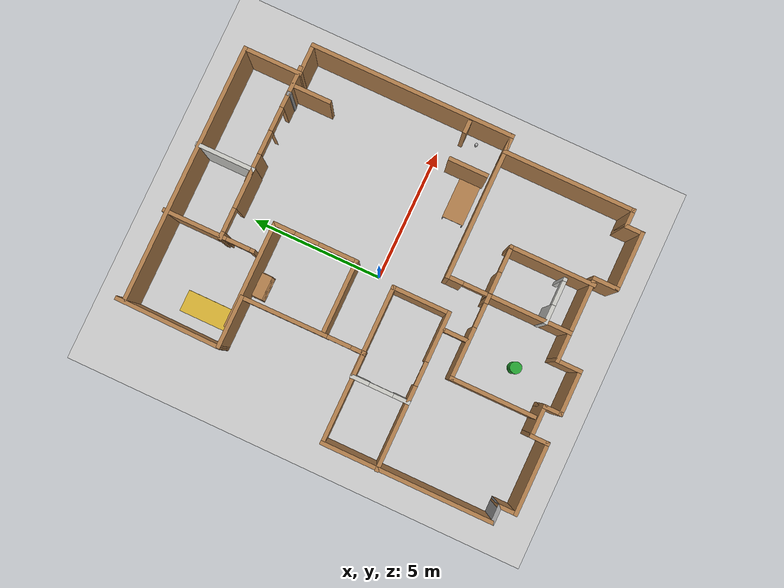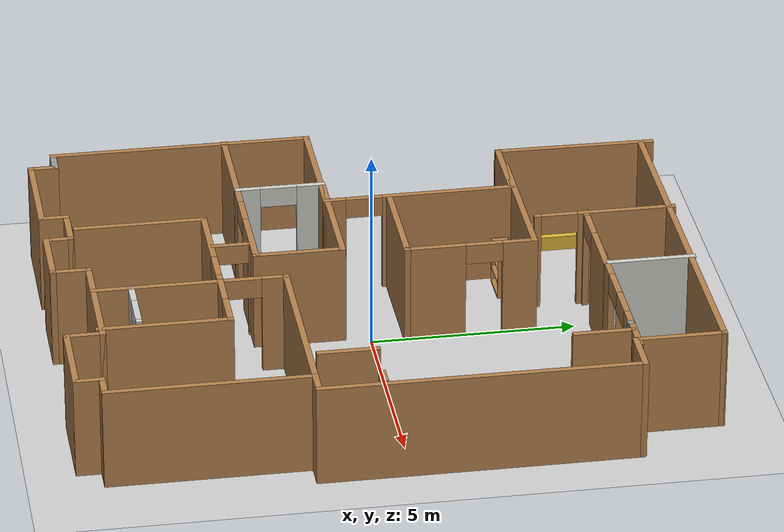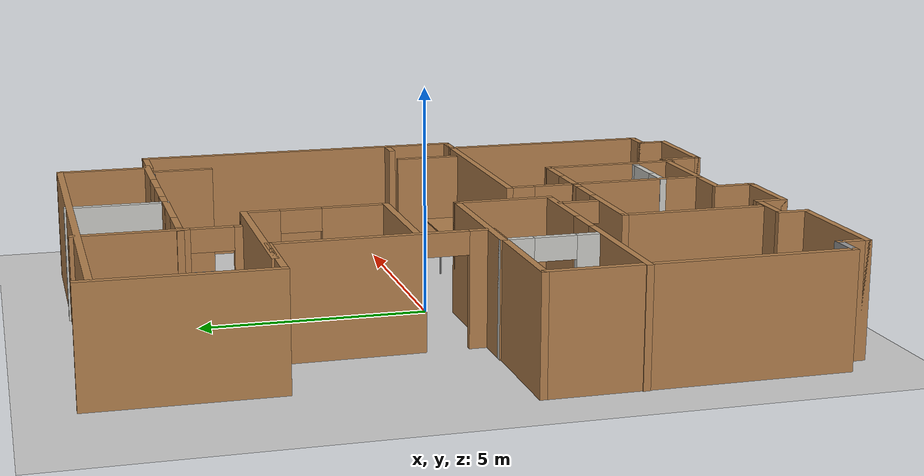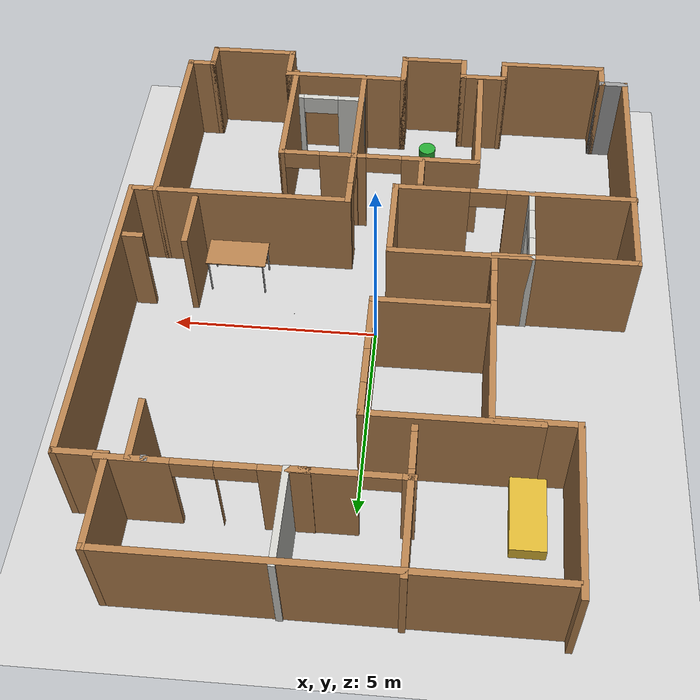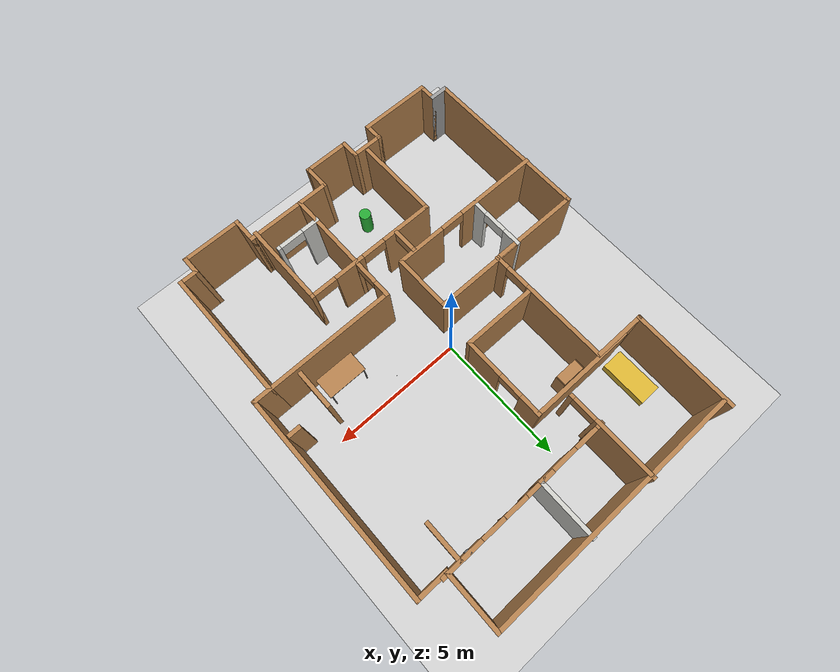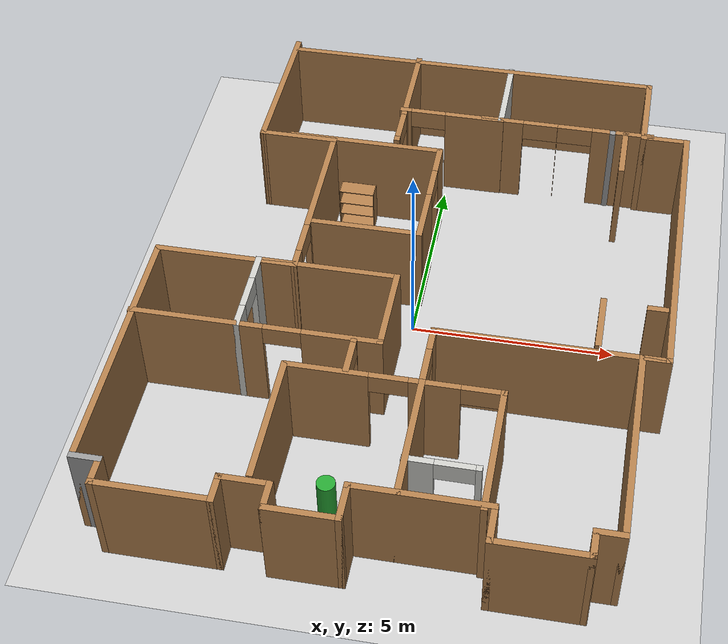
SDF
<sdf version="1.7">
 <world name="default">
  <light name="sun" type="directional">
   <pose>0 0 10 0 -0 0</pose>
   <diffuse>0.8 0.8 0.8 1</diffuse>
   <specular>0.2 0.2 0.2 1</specular>
   <attenuation>
    <range>1000</range>
    <constant>0.9</constant>
    <linear>0.01</linear>
    <quadratic>0.001</quadratic>
   </attenuation>
   <direction>-0.5 0.1 -0.9</direction>
   <spot><inner_angle>0</inner_angle><outer_angle>0</outer_angle><falloff>0</falloff></spot>
  </light>
  <model name="ground_plane">
   <static>1</static>
   <link name="link">
    <collision name="collision">
     <geometry><plane><normal>0 0 1</normal><size>100 100</size></plane></geometry>
     <surface>
      <contact><collide_bitmask>65535</collide_bitmask></contact>
      <friction><ode><mu>100</mu><mu2>50</mu2></ode></friction>
     </surface>
    </collision>
    <visual name="visual">
     <cast_shadows>0</cast_shadows>
     <geometry><plane><normal>0 0 1</normal><size>100 100</size></plane></geometry>
     <material>
      <script><uri>file://media/materials/scripts/gazebo.material</uri><name>Gazebo/Grey</name></script>
     </material>
    </visual>
   </link>
  </model>
  <gravity>0 0 -9.8</gravity>
  <magnetic_field>6e-06 2.3e-05 -4.2e-05</magnetic_field>
  <atmosphere type="adiabatic"/>
  <physics type="ode">
   <max_step_size>0.001</max_step_size>
   <real_time_factor>1</real_time_factor>
   <real_time_update_rate>1000</real_time_update_rate>
  </physics>
  <scene><ambient>0.4 0.4 0.4 1</ambient><background>0.7 0.7 0.7 1</background><shadows>1</shadows></scene>
  <spherical_coordinates>
   <surface_model>EARTH_WGS84</surface_model>
   <latitude_deg>0</latitude_deg>
   <longitude_deg>0</longitude_deg>
   <elevation>0</elevation>
   <heading_deg>0</heading_deg>
  </spherical_coordinates>
  <model name="wall">
   <pose>0.04617 0.06426 0 0 -0 0</pose>
   <link name="Wall_0">
    <collision name="Wall_0_Collision">
     <geometry><box><size>4 0.15 2.5</size></box></geometry>
     <pose>0 0 1.25 0 -0 0</pose>
    </collision>
    <visual name="Wall_0_Visual">
     <pose>0 0 1.25 0 -0 0</pose>
     <geometry><box><size>4 0.15 2.5</size></box></geometry>
     <material>
      <script><uri>file://media/materials/scripts/gazebo.material</uri><name>Gazebo/Wood</name></script>
      <ambient>1 1 1 1</ambient>
     </material>
     <meta><layer>0</layer></meta>
    </visual>
    <pose>-4.65887 5.77462 0 0 -0 -1.58281</pose>
   </link>
   <link name="Wall_1">
    <collision name="Wall_1_Collision">
     <geometry><box><size>2 0.15 2.5</size></box></geometry>
     <pose>0 0 1.25 0 -0 0</pose>
    </collision>
    <visual name="Wall_1_Visual">
     <pose>0 0 1.25 0 -0 0</pose>
     <geometry><box><size>2 0.15 2.5</size></box></geometry>
     <material>
      <script><uri>file://media/materials/scripts/gazebo.material</uri><name>Gazebo/Wood</name></script>
      <ambient>1 1 1 1</ambient>
     </material>
     <meta><layer>0</layer></meta>
    </visual>
    <pose>-3.73387 3.84962 0 0 -0 0</pose>
   </link>
   <link name="Wall_10">
    <collision name="Wall_10_Collision">
     <geometry><box><size>0.75 0.15 2.5</size></box></geometry>
     <pose>0 0 1.25 0 -0 0</pose>
    </collision>
    <visual name="Wall_10_Visual">
     <pose>0 0 1.25 0 -0 0</pose>
     <geometry><box><size>0.75 0.15 2.5</size></box></geometry>
     <material>
      <script><uri>file://media/materials/scripts/gazebo.material</uri><name>Gazebo/Wood</name></script>
      <ambient>1 1 1 1</ambient>
     </material>
     <meta><layer>0</layer></meta>
    </visual>
    <pose>-1.83574 -7.40038 0 0 -0 -1.5708</pose>
   </link>
   <link name="Wall_11">
    <collision name="Wall_11_Collision">
     <geometry><box><size>1.75 0.15 2.5</size></box></geometry>
     <pose>0 0 1.25 0 -0 0</pose>
    </collision>
    <visual name="Wall_11_Visual">
     <pose>0 0 1.25 0 -0 0</pose>
     <geometry><box><size>1.75 0.15 2.5</size></box></geometry>
     <material>
      <script><uri>file://media/materials/scripts/gazebo.material</uri><name>Gazebo/Wood</name></script>
      <ambient>1 1 1 1</ambient>
     </material>
     <meta><layer>0</layer></meta>
    </visual>
    <pose>-1.03574 -7.70038 0 0 -0 0</pose>
   </link>
   <link name="Wall_12">
    <collision name="Wall_12_Collision">
     <geometry><box><size>1 0.15 2.5</size></box></geometry>
     <pose>0 0 1.25 0 -0 0</pose>
    </collision>
    <visual name="Wall_12_Visual">
     <pose>0 0 1.25 0 -0 0</pose>
     <geometry><box><size>1 0.15 2.5</size></box></geometry>
     <material>
      <script><uri>file://media/materials/scripts/gazebo.material</uri><name>Gazebo/Wood</name></script>
      <ambient>1 1 1 1</ambient>
     </material>
     <meta><layer>0</layer></meta>
    </visual>
    <pose>-0.235743 -7.27538 0 0 -0 1.5708</pose>
   </link>
   <link name="Wall_13">
    <collision name="Wall_13_Collision">
     <geometry><box><size>3.25 0.15 2.5</size></box></geometry>
     <pose>0 0 1.25 0 -0 0</pose>
    </collision>
    <visual name="Wall_13_Visual">
     <pose>0 0 1.25 0 -0 0</pose>
     <geometry><box><size>3.25 0.15 2.5</size></box></geometry>
     <material>
      <script><uri>file://media/materials/scripts/gazebo.material</uri><name>Gazebo/Wood</name></script>
      <ambient>1 1 1 1</ambient>
     </material>
     <meta><layer>0</layer></meta>
    </visual>
    <pose>1.31426 -6.85038 0 0 -0 0</pose>
   </link>
   <link name="Wall_14">
    <collision name="Wall_14_Collision">
     <geometry><box><size>1 0.15 2.5</size></box></geometry>
     <pose>0 0 1.25 0 -0 0</pose>
    </collision>
    <visual name="Wall_14_Visual">
     <pose>0 0 1.25 0 -0 0</pose>
     <geometry><box><size>1 0.15 2.5</size></box></geometry>
     <material>
      <script><uri>file://media/materials/scripts/gazebo.material</uri><name>Gazebo/Wood</name></script>
      <ambient>1 1 1 1</ambient>
     </material>
     <meta><layer>0</layer></meta>
    </visual>
    <pose>2.86426 -7.27538 0 0 -0 -1.5708</pose>
   </link>
   <link name="Wall_15">
    <collision name="Wall_15_Collision">
     <geometry><box><size>2.25 0.15 2.5</size></box></geometry>
     <pose>0 0 1.25 0 -0 0</pose>
    </collision>
    <visual name="Wall_15_Visual">
     <pose>0 0 1.25 0 -0 0</pose>
     <geometry><box><size>2.25 0.15 2.5</size></box></geometry>
     <material>
      <script><uri>file://media/materials/scripts/gazebo.material</uri><name>Gazebo/Wood</name></script>
      <ambient>1 1 1 1</ambient>
     </material>
     <meta><layer>0</layer></meta>
    </visual>
    <pose>3.91426 -7.70038 0 0 -0 0</pose>
   </link>
   <link name="Wall_16">
    <collision name="Wall_16_Collision">
     <geometry><box><size>0.75 0.15 2.5</size></box></geometry>
     <pose>0 0 1.25 0 -0 0</pose>
    </collision>
    <visual name="Wall_16_Visual">
     <pose>0 0 1.25 0 -0 0</pose>
     <geometry><box><size>0.75 0.15 2.5</size></box></geometry>
     <material>
      <script><uri>file://media/materials/scripts/gazebo.material</uri><name>Gazebo/Wood</name></script>
      <ambient>1 1 1 1</ambient>
     </material>
     <meta><layer>0</layer></meta>
    </visual>
    <pose>4.96426 -7.40038 0 0 -0 1.5708</pose>
   </link>
   <link name="Wall_17">
    <collision name="Wall_17_Collision">
     <geometry><box><size>0.75 0.15 2.5</size></box></geometry>
     <pose>0 0 1.25 0 -0 0</pose>
    </collision>
    <visual name="Wall_17_Visual">
     <pose>0 0 1.25 0 -0 0</pose>
     <geometry><box><size>0.75 0.15 2.5</size></box></geometry>
     <material>
      <script><uri>file://media/materials/scripts/gazebo.material</uri><name>Gazebo/Wood</name></script>
      <ambient>1 1 1 1</ambient>
     </material>
     <meta><layer>0</layer></meta>
    </visual>
    <pose>5.26426 -7.10038 0 0 -0 0</pose>
   </link>
   <link name="Wall_18">
    <collision name="Wall_18_Collision">
     <geometry><box><size>5 0.15 2.5</size></box></geometry>
     <pose>0 0 1.25 0 -0 0</pose>
    </collision>
    <visual name="Wall_18_Visual">
     <pose>0 0 1.25 0 -0 0</pose>
     <geometry><box><size>5 0.15 2.5</size></box></geometry>
     <material>
      <script><uri>file://media/materials/scripts/gazebo.material</uri><name>Gazebo/Wood</name></script>
      <ambient>1 1 1 1</ambient>
     </material>
     <meta><layer>0</layer></meta>
    </visual>
    <pose>5.56426 -4.67538 0 0 -0 1.5708</pose>
   </link>
   <link name="Wall_19">
    <collision name="Wall_19_Collision">
     <geometry><box><size>0.75 0.15 2.5</size></box></geometry>
     <pose>0 0 1.25 0 -0 0</pose>
    </collision>
    <visual name="Wall_19_Visual">
     <pose>0 0 1.25 0 -0 0</pose>
     <geometry><box><size>0.75 0.15 2.5</size></box></geometry>
     <material>
      <script><uri>file://media/materials/scripts/gazebo.material</uri><name>Gazebo/Wood</name></script>
      <ambient>1 1 1 1</ambient>
     </material>
     <meta><layer>0</layer></meta>
    </visual>
    <pose>5.86426 -2.25038 0 0 -0 0</pose>
   </link>
   <link name="Wall_2">
    <pose>-2.79731 1.54962 0 0 -0 -1.56577</pose>
    <visual name="Wall_2_Visual_0">
     <pose>-0.729525 0 1.25 0 -0 0</pose>
     <geometry><box><size>3.29101 0.15 2.5</size></box></geometry>
     <material>
      <script><uri>file://media/materials/scripts/gazebo.material</uri><name>Gazebo/Wood</name></script>
      <ambient>1 1 1 1</ambient>
     </material>
     <meta><layer>0</layer></meta>
    </visual>
    <collision name="Wall_2_Collision_0">
     <geometry><box><size>3.29101 0.15 2.5</size></box></geometry>
     <pose>-0.729525 0 1.25 0 -0 0</pose>
    </collision>
    <visual name="Wall_2_Visual_1">
     <pose>2.0955 0 1.25 0 -0 0</pose>
     <geometry><box><size>0.55905 0.15 2.5</size></box></geometry>
     <material>
      <script><uri>file://media/materials/scripts/gazebo.material</uri><name>Gazebo/Wood</name></script>
      <ambient>1 1 1 1</ambient>
     </material>
     <meta><layer>0</layer></meta>
    </visual>
    <collision name="Wall_2_Collision_1">
     <geometry><box><size>0.55905 0.15 2.5</size></box></geometry>
     <pose>2.0955 0 1.25 0 -0 0</pose>
    </collision>
    <visual name="Wall_2_Visual_2">
     <pose>1.36598 0 2.25 0 -0 0</pose>
     <geometry><box><size>0.9 0.15 0.5</size></box></geometry>
     <material>
      <script><uri>file://media/materials/scripts/gazebo.material</uri><name>Gazebo/Wood</name></script>
      <ambient>1 1 1 1</ambient>
     </material>
     <meta><layer>0</layer></meta>
    </visual>
    <collision name="Wall_2_Collision_2">
     <geometry><box><size>0.9 0.15 0.5</size></box></geometry>
     <pose>1.36598 0 2.25 0 -0 0</pose>
    </collision>
   </link>
   <link name="Wall_20">
    <collision name="Wall_20_Collision">
     <geometry><box><size>7.75 0.15 2.5</size></box></geometry>
     <pose>0 0 1.25 0 -0 0</pose>
    </collision>
    <visual name="Wall_20_Visual">
     <pose>0 0 1.25 0 -0 0</pose>
     <geometry><box><size>7.75 0.15 2.5</size></box></geometry>
     <material>
      <script><uri>file://media/materials/scripts/gazebo.material</uri><name>Gazebo/Wood</name></script>
      <ambient>1 1 1 1</ambient>
     </material>
     <meta><layer>0</layer></meta>
    </visual>
    <pose>6.16426 1.54962 0 0 -0 1.5708</pose>
   </link>
   <link name="Wall_21">
    <collision name="Wall_21_Collision">
     <geometry><box><size>1.25 0.15 2.5</size></box></geometry>
     <pose>0 0 1.25 0 -0 0</pose>
    </collision>
    <visual name="Wall_21_Visual">
     <pose>0 0 1.25 0 -0 0</pose>
     <geometry><box><size>1.25 0.15 2.5</size></box></geometry>
     <material>
      <script><uri>file://media/materials/scripts/gazebo.material</uri><name>Gazebo/Wood</name></script>
      <ambient>1 1 1 1</ambient>
     </material>
     <meta><layer>0</layer></meta>
    </visual>
    <pose>5.61426 5.34962 0 0 -0 3.14159</pose>
   </link>
   <link name="Wall_22">
    <collision name="Wall_22_Collision">
     <geometry><box><size>2.25 0.15 2.5</size></box></geometry>
     <pose>0 0 1.25 0 -0 0</pose>
    </collision>
    <visual name="Wall_22_Visual">
     <pose>0 0 1.25 0 -0 0</pose>
     <geometry><box><size>2.25 0.15 2.5</size></box></geometry>
     <material>
      <script><uri>file://media/materials/scripts/gazebo.material</uri><name>Gazebo/Wood</name></script>
      <ambient>1 1 1 1</ambient>
     </material>
     <meta><layer>0</layer></meta>
    </visual>
    <pose>5.06426 6.39962 0 0 -0 1.5708</pose>
   </link>
   <link name="Wall_23">
    <collision name="Wall_23_Collision">
     <geometry><box><size>9.75 0.15 2.5</size></box></geometry>
     <pose>0 0 1.25 0 -0 0</pose>
    </collision>
    <visual name="Wall_23_Visual">
     <pose>0 0 1.25 0 -0 0</pose>
     <geometry><box><size>9.75 0.15 2.5</size></box></geometry>
     <material>
      <script><uri>file://media/materials/scripts/gazebo.material</uri><name>Gazebo/Wood</name></script>
      <ambient>1 1 1 1</ambient>
     </material>
     <meta><layer>0</layer></meta>
    </visual>
    <pose>0.264257 7.44962 0 0 -0 3.14159</pose>
   </link>
   <link name="Wall_25">
    <pose>-1.21241 5.86271 0 0 -0 -1.5708</pose>
    <visual name="Wall_25_Visual_0">
     <pose>-0.538098 0 1.25 0 -0 0</pose>
     <geometry><box><size>2.4238 0.15 2.5</size></box></geometry>
     <material>
      <script><uri>file://media/materials/scripts/gazebo.material</uri><name>Gazebo/Wood</name></script>
      <ambient>1 1 1 1</ambient>
     </material>
     <meta><layer>0</layer></meta>
    </visual>
    <collision name="Wall_25_Collision_0">
     <geometry><box><size>2.4238 0.15 2.5</size></box></geometry>
     <pose>-0.538098 0 1.25 0 -0 0</pose>
    </collision>
    <visual name="Wall_25_Visual_1">
     <pose>1.6619 0 1.25 0 -0 0</pose>
     <geometry><box><size>0.176196 0.15 2.5</size></box></geometry>
     <material>
      <script><uri>file://media/materials/scripts/gazebo.material</uri><name>Gazebo/Wood</name></script>
      <ambient>1 1 1 1</ambient>
     </material>
     <meta><layer>0</layer></meta>
    </visual>
    <collision name="Wall_25_Collision_1">
     <geometry><box><size>0.176196 0.15 2.5</size></box></geometry>
     <pose>1.6619 0 1.25 0 -0 0</pose>
    </collision>
    <visual name="Wall_25_Visual_2">
     <pose>1.1238 0 2.25 0 -0 0</pose>
     <geometry><box><size>0.9 0.15 0.5</size></box></geometry>
     <material>
      <script><uri>file://media/materials/scripts/gazebo.material</uri><name>Gazebo/Wood</name></script>
      <ambient>1 1 1 1</ambient>
     </material>
     <meta><layer>0</layer></meta>
    </visual>
    <collision name="Wall_25_Collision_2">
     <geometry><box><size>0.9 0.15 0.5</size></box></geometry>
     <pose>1.1238 0 2.25 0 -0 0</pose>
    </collision>
   </link>
   <link name="Wall_29">
    <collision name="Wall_29_Collision">
     <geometry><box><size>4 0.15 2.5</size></box></geometry>
     <pose>0 0 1.25 0 -0 0</pose>
    </collision>
    <visual name="Wall_29_Visual">
     <pose>0 0 1.25 0 -0 0</pose>
     <geometry><box><size>4 0.15 2.5</size></box></geometry>
     <material>
      <script><uri>file://media/materials/scripts/gazebo.material</uri><name>Gazebo/Wood</name></script>
      <ambient>1 1 1 1</ambient>
     </material>
     <meta><layer>0</layer></meta>
    </visual>
    <pose>-1.97056 3.9062 0 0 -0 0</pose>
   </link>
   <link name="Wall_3">
    <collision name="Wall_3_Collision">
     <geometry><box><size>3.5 0.15 2.5</size></box></geometry>
     <pose>0 0 1.25 0 -0 0</pose>
    </collision>
    <visual name="Wall_3_Visual">
     <pose>0 0 1.25 0 -0 0</pose>
     <geometry><box><size>3.5 0.15 2.5</size></box></geometry>
     <material>
      <script><uri>file://media/materials/scripts/gazebo.material</uri><name>Gazebo/Wood</name></script>
      <ambient>1 1 1 1</ambient>
     </material>
     <meta><layer>0</layer></meta>
    </visual>
    <pose>-4.46074 -0.750378 0 0 -0 3.14159</pose>
   </link>
   <link name="Wall_30">
    <pose>-0.045563 2.3562 0 0 -0 -1.5708</pose>
    <visual name="Wall_30_Visual_0">
     <pose>-1.19954 0 1.25 0 -0 0</pose>
     <geometry><box><size>0.850922 0.15 2.5</size></box></geometry>
     <material>
      <script><uri>file://media/materials/scripts/gazebo.material</uri><name>Gazebo/Wood</name></script>
      <ambient>1 1 1 1</ambient>
     </material>
     <meta><layer>0</layer></meta>
    </visual>
    <collision name="Wall_30_Collision_0">
     <geometry><box><size>0.850922 0.15 2.5</size></box></geometry>
     <pose>-1.19954 0 1.25 0 -0 0</pose>
    </collision>
    <visual name="Wall_30_Visual_1">
     <pose>0.875461 0 1.25 0 -0 0</pose>
     <geometry><box><size>1.49908 0.15 2.5</size></box></geometry>
     <material>
      <script><uri>file://media/materials/scripts/gazebo.material</uri><name>Gazebo/Wood</name></script>
      <ambient>1 1 1 1</ambient>
     </material>
     <meta><layer>0</layer></meta>
    </visual>
    <collision name="Wall_30_Collision_1">
     <geometry><box><size>1.49908 0.15 2.5</size></box></geometry>
     <pose>0.875461 0 1.25 0 -0 0</pose>
    </collision>
    <visual name="Wall_30_Visual_2">
     <pose>-0.324078 0 2.25 0 -0 0</pose>
     <geometry><box><size>0.9 0.15 0.5</size></box></geometry>
     <material>
      <script><uri>file://media/materials/scripts/gazebo.material</uri><name>Gazebo/Wood</name></script>
      <ambient>1 1 1 1</ambient>
     </material>
     <meta><layer>0</layer></meta>
    </visual>
    <collision name="Wall_30_Collision_2">
     <geometry><box><size>0.9 0.15 0.5</size></box></geometry>
     <pose>-0.324078 0 2.25 0 -0 0</pose>
    </collision>
   </link>
   <link name="Wall_31">
    <collision name="Wall_31_Collision">
     <geometry><box><size>2.75 0.15 2.5</size></box></geometry>
     <pose>0 0 1.25 0 -0 0</pose>
    </collision>
    <visual name="Wall_31_Visual">
     <pose>0 0 1.25 0 -0 0</pose>
     <geometry><box><size>2.75 0.15 2.5</size></box></geometry>
     <material>
      <script><uri>file://media/materials/scripts/gazebo.material</uri><name>Gazebo/Wood</name></script>
      <ambient>1 1 1 1</ambient>
     </material>
     <meta><layer>0</layer></meta>
    </visual>
    <pose>-1.34556 0.806202 0 0 -0 3.14159</pose>
   </link>
   <link name="Wall_33">
    <collision name="Wall_33_Collision">
     <geometry><box><size>3.5 0.15 2.5</size></box></geometry>
     <pose>0 0 1.25 0 -0 0</pose>
    </collision>
    <visual name="Wall_33_Visual">
     <pose>0 0 1.25 0 -0 0</pose>
     <geometry><box><size>3.5 0.15 2.5</size></box></geometry>
     <material>
      <script><uri>file://media/materials/scripts/gazebo.material</uri><name>Gazebo/Wood</name></script>
      <ambient>1 1 1 1</ambient>
     </material>
     <meta><layer>0</layer></meta>
    </visual>
    <pose>-1.98926 -0.71992 0 0 -0 0</pose>
   </link>
   <link name="Wall_34">
    <collision name="Wall_34_Collision">
     <geometry><box><size>2.25 0.15 2.5</size></box></geometry>
     <pose>0 0 1.25 0 -0 0</pose>
    </collision>
    <visual name="Wall_34_Visual">
     <pose>0 0 1.25 0 -0 0</pose>
     <geometry><box><size>2.25 0.15 2.5</size></box></geometry>
     <material>
      <script><uri>file://media/materials/scripts/gazebo.material</uri><name>Gazebo/Wood</name></script>
      <ambient>1 1 1 1</ambient>
     </material>
     <meta><layer>0</layer></meta>
    </visual>
    <pose>-0.314257 -1.76992 0 0 -0 -1.5708</pose>
   </link>
   <link name="Wall_35">
    <pose>-3.23926 -2.81992 0 0 -0 3.14159</pose>
    <visual name="Wall_35_Visual_0">
     <pose>-2.0445 0 1.25 0 -0 0</pose>
     <geometry><box><size>1.91099 0.15 2.5</size></box></geometry>
     <material>
      <script><uri>file://media/materials/scripts/gazebo.material</uri><name>Gazebo/Wood</name></script>
      <ambient>1 1 1 1</ambient>
     </material>
     <meta><layer>0</layer></meta>
    </visual>
    <collision name="Wall_35_Collision_0">
     <geometry><box><size>1.91099 0.15 2.5</size></box></geometry>
     <pose>-2.0445 0 1.25 0 -0 0</pose>
    </collision>
    <visual name="Wall_35_Visual_1">
     <pose>1.4055 0 1.25 0 -0 0</pose>
     <geometry><box><size>3.18901 0.15 2.5</size></box></geometry>
     <material>
      <script><uri>file://media/materials/scripts/gazebo.material</uri><name>Gazebo/Wood</name></script>
      <ambient>1 1 1 1</ambient>
     </material>
     <meta><layer>0</layer></meta>
    </visual>
    <collision name="Wall_35_Collision_1">
     <geometry><box><size>3.18901 0.15 2.5</size></box></geometry>
     <pose>1.4055 0 1.25 0 -0 0</pose>
    </collision>
    <visual name="Wall_35_Visual_2">
     <pose>-0.639008 0 2.25 0 -0 0</pose>
     <geometry><box><size>0.9 0.15 0.5</size></box></geometry>
     <material>
      <script><uri>file://media/materials/scripts/gazebo.material</uri><name>Gazebo/Wood</name></script>
      <ambient>1 1 1 1</ambient>
     </material>
     <meta><layer>0</layer></meta>
    </visual>
    <collision name="Wall_35_Collision_2">
     <geometry><box><size>0.9 0.15 0.5</size></box></geometry>
     <pose>-0.639008 0 2.25 0 -0 0</pose>
    </collision>
   </link>
   <link name="Wall_37">
    <pose>-3.66426 -1.76992 0 0 -0 -1.5708</pose>
    <visual name="Wall_37_Visual_0">
     <pose>-0.768931 0 1.25 0 -0 0</pose>
     <geometry><box><size>0.712139 0.15 2.5</size></box></geometry>
     <material>
      <script><uri>file://media/materials/scripts/gazebo.material</uri><name>Gazebo/CeilingTiled</name></script>
      <ambient>1 1 1 1</ambient>
     </material>
     <meta><layer>0</layer></meta>
    </visual>
    <collision name="Wall_37_Collision_0">
     <geometry><box><size>0.712139 0.15 2.5</size></box></geometry>
     <pose>-0.768931 0 1.25 0 -0 0</pose>
    </collision>
    <visual name="Wall_37_Visual_1">
     <pose>0.806069 0 1.25 0 -0 0</pose>
     <geometry><box><size>0.637861 0.15 2.5</size></box></geometry>
     <material>
      <script><uri>file://media/materials/scripts/gazebo.material</uri><name>Gazebo/CeilingTiled</name></script>
      <ambient>1 1 1 1</ambient>
     </material>
     <meta><layer>0</layer></meta>
    </visual>
    <collision name="Wall_37_Collision_1">
     <geometry><box><size>0.637861 0.15 2.5</size></box></geometry>
     <pose>0.806069 0 1.25 0 -0 0</pose>
    </collision>
    <visual name="Wall_37_Visual_2">
     <pose>0.037139 0 2.25 0 -0 0</pose>
     <geometry><box><size>0.9 0.15 0.5</size></box></geometry>
     <material>
      <script><uri>file://media/materials/scripts/gazebo.material</uri><name>Gazebo/CeilingTiled</name></script>
      <ambient>1 1 1 1</ambient>
     </material>
     <meta><layer>0</layer></meta>
    </visual>
    <collision name="Wall_37_Collision_2">
     <geometry><box><size>0.9 0.15 0.5</size></box></geometry>
     <pose>0.037139 0 2.25 0 -0 0</pose>
    </collision>
   </link>
   <link name="Wall_39">
    <pose>-0.911715 -3.3192 0 0 -0 -1.5708</pose>
    <visual name="Wall_39_Visual_0">
     <pose>-0.444629 0 1.25 0 -0 0</pose>
     <geometry><box><size>0.110743 0.15 2.5</size></box></geometry>
     <material>
      <script><uri>file://media/materials/scripts/gazebo.material</uri><name>Gazebo/Wood</name></script>
      <ambient>1 1 1 1</ambient>
     </material>
     <meta><layer>0</layer></meta>
    </visual>
    <collision name="Wall_39_Collision_0">
     <geometry><box><size>0.110743 0.15 2.5</size></box></geometry>
     <pose>-0.444629 0 1.25 0 -0 0</pose>
    </collision>
    <visual name="Wall_39_Visual_1">
     <pose>0.055371 0 2.25 0 -0 0</pose>
     <geometry><box><size>0.889257 0.15 0.5</size></box></geometry>
     <material>
      <script><uri>file://media/materials/scripts/gazebo.material</uri><name>Gazebo/Wood</name></script>
      <ambient>1 1 1 1</ambient>
     </material>
     <meta><layer>0</layer></meta>
    </visual>
    <collision name="Wall_39_Collision_1">
     <geometry><box><size>0.889257 0.15 0.5</size></box></geometry>
     <pose>0.055371 0 2.25 0 -0 0</pose>
    </collision>
   </link>
   <link name="Wall_4">
    <collision name="Wall_4_Collision">
     <geometry><box><size>6.5 0.15 2.5</size></box></geometry>
     <pose>0 0 1.25 0 -0 0</pose>
    </collision>
    <visual name="Wall_4_Visual">
     <pose>0 0 1.25 0 -0 0</pose>
     <geometry><box><size>6.5 0.15 2.5</size></box></geometry>
     <material>
      <script><uri>file://media/materials/scripts/gazebo.material</uri><name>Gazebo/Wood</name></script>
      <ambient>1 1 1 1</ambient>
     </material>
     <meta><layer>0</layer></meta>
    </visual>
    <pose>-6.13574 -3.92538 0 0 -0 -1.5708</pose>
   </link>
   <link name="Wall_41">
    <collision name="Wall_41_Collision">
     <geometry><box><size>5.5 0.15 2.5</size></box></geometry>
     <pose>0 0 1.25 0 -0 0</pose>
    </collision>
    <visual name="Wall_41_Visual">
     <pose>0 0 1.25 0 -0 0</pose>
     <geometry><box><size>5.5 0.15 2.5</size></box></geometry>
     <material>
      <script><uri>file://media/materials/scripts/gazebo.material</uri><name>Gazebo/Wood</name></script>
      <ambient>1 1 1 1</ambient>
     </material>
     <meta><layer>0</layer></meta>
    </visual>
    <pose>3.48926 -2.25038 0 0 -0 3.14159</pose>
   </link>
   <link name="Wall_42">
    <pose>0.814257 -4.55038 0 0 -0 -1.5708</pose>
    <visual name="Wall_42_Visual_0">
     <pose>-2.04398 0 1.25 0 -0 0</pose>
     <geometry><box><size>0.662039 0.15 2.5</size></box></geometry>
     <material>
      <script><uri>file://media/materials/scripts/gazebo.material</uri><name>Gazebo/Wood</name></script>
      <ambient>1 1 1 1</ambient>
     </material>
     <meta><layer>0</layer></meta>
    </visual>
    <collision name="Wall_42_Collision_0">
     <geometry><box><size>0.662039 0.15 2.5</size></box></geometry>
     <pose>-2.04398 0 1.25 0 -0 0</pose>
    </collision>
    <visual name="Wall_42_Visual_1">
     <pose>0.781019 0 1.25 0 -0 0</pose>
     <geometry><box><size>3.18796 0.15 2.5</size></box></geometry>
     <material>
      <script><uri>file://media/materials/scripts/gazebo.material</uri><name>Gazebo/Wood</name></script>
      <ambient>1 1 1 1</ambient>
     </material>
     <meta><layer>0</layer></meta>
    </visual>
    <collision name="Wall_42_Collision_1">
     <geometry><box><size>3.18796 0.15 2.5</size></box></geometry>
     <pose>0.781019 0 1.25 0 -0 0</pose>
    </collision>
    <visual name="Wall_42_Visual_2">
     <pose>-1.26296 0 2.25 0 -0 0</pose>
     <geometry><box><size>0.9 0.15 0.5</size></box></geometry>
     <material>
      <script><uri>file://media/materials/scripts/gazebo.material</uri><name>Gazebo/Wood</name></script>
      <ambient>1 1 1 1</ambient>
     </material>
     <meta><layer>0</layer></meta>
    </visual>
    <collision name="Wall_42_Collision_2">
     <geometry><box><size>0.9 0.15 0.5</size></box></geometry>
     <pose>-1.26296 0 2.25 0 -0 0</pose>
    </collision>
   </link>
   <link name="Wall_44">
    <pose>1.72495 -3.81942 0 0 -0 0</pose>
    <visual name="Wall_44_Visual_0">
     <pose>-0.516712 0 1.25 0 -0 0</pose>
     <geometry><box><size>0.966575 0.15 2.5</size></box></geometry>
     <material>
      <script><uri>file://media/materials/scripts/gazebo.material</uri><name>Gazebo/Wood</name></script>
      <ambient>1 1 1 1</ambient>
     </material>
     <meta><layer>0</layer></meta>
    </visual>
    <collision name="Wall_44_Collision_0">
     <geometry><box><size>0.966575 0.15 2.5</size></box></geometry>
     <pose>-0.516712 0 1.25 0 -0 0</pose>
    </collision>
    <visual name="Wall_44_Visual_1">
     <pose>0.933288 0 1.25 0 -0 0</pose>
     <geometry><box><size>0.133425 0.15 2.5</size></box></geometry>
     <material>
      <script><uri>file://media/materials/scripts/gazebo.material</uri><name>Gazebo/Wood</name></script>
      <ambient>1 1 1 1</ambient>
     </material>
     <meta><layer>0</layer></meta>
    </visual>
    <collision name="Wall_44_Collision_1">
     <geometry><box><size>0.133425 0.15 2.5</size></box></geometry>
     <pose>0.933288 0 1.25 0 -0 0</pose>
    </collision>
    <visual name="Wall_44_Visual_2">
     <pose>0.416575 0 2.25 0 -0 0</pose>
     <geometry><box><size>0.9 0.15 0.5</size></box></geometry>
     <material>
      <script><uri>file://media/materials/scripts/gazebo.material</uri><name>Gazebo/Wood</name></script>
      <ambient>1 1 1 1</ambient>
     </material>
     <meta><layer>0</layer></meta>
    </visual>
    <collision name="Wall_44_Collision_2">
     <geometry><box><size>0.9 0.15 0.5</size></box></geometry>
     <pose>0.416575 0 2.25 0 -0 0</pose>
    </collision>
   </link>
   <link name="Wall_45">
    <collision name="Wall_45_Collision">
     <geometry><box><size>3.25 0.15 2.5</size></box></geometry>
     <pose>0 0 1.25 0 -0 0</pose>
    </collision>
    <visual name="Wall_45_Visual">
     <pose>0 0 1.25 0 -0 0</pose>
     <geometry><box><size>3.25 0.15 2.5</size></box></geometry>
     <material>
      <script><uri>file://media/materials/scripts/gazebo.material</uri><name>Gazebo/Wood</name></script>
      <ambient>1 1 1 1</ambient>
     </material>
     <meta><layer>0</layer></meta>
    </visual>
    <pose>2.64995 -5.36942 0 0 -0 -1.5708</pose>
   </link>
   <link name="Wall_47">
    <pose>-0.75005 -3.81942 0 0 -0 3.14159</pose>
    <visual name="Wall_47_Visual_0">
     <pose>-1.44241 0 1.25 0 -0 0</pose>
     <geometry><box><size>0.365179 0.15 2.5</size></box></geometry>
     <material>
      <script><uri>file://media/materials/scripts/gazebo.material</uri><name>Gazebo/Wood</name></script>
      <ambient>1 1 1 1</ambient>
     </material>
     <meta><layer>0</layer></meta>
    </visual>
    <collision name="Wall_47_Collision_0">
     <geometry><box><size>0.365179 0.15 2.5</size></box></geometry>
     <pose>-1.44241 0 1.25 0 -0 0</pose>
    </collision>
    <visual name="Wall_47_Visual_1">
     <pose>0.63259 0 1.25 0 -0 0</pose>
     <geometry><box><size>1.98482 0.15 2.5</size></box></geometry>
     <material>
      <script><uri>file://media/materials/scripts/gazebo.material</uri><name>Gazebo/Wood</name></script>
      <ambient>1 1 1 1</ambient>
     </material>
     <meta><layer>0</layer></meta>
    </visual>
    <collision name="Wall_47_Collision_1">
     <geometry><box><size>1.98482 0.15 2.5</size></box></geometry>
     <pose>0.63259 0 1.25 0 -0 0</pose>
    </collision>
    <visual name="Wall_47_Visual_2">
     <pose>-0.809821 0 2.25 0 -0 0</pose>
     <geometry><box><size>0.9 0.15 0.5</size></box></geometry>
     <material>
      <script><uri>file://media/materials/scripts/gazebo.material</uri><name>Gazebo/Wood</name></script>
      <ambient>1 1 1 1</ambient>
     </material>
     <meta><layer>0</layer></meta>
    </visual>
    <collision name="Wall_47_Collision_2">
     <geometry><box><size>0.9 0.15 0.5</size></box></geometry>
     <pose>-0.809821 0 2.25 0 -0 0</pose>
    </collision>
   </link>
   <link name="Wall_48">
    <collision name="Wall_48_Collision">
     <geometry><box><size>3.25 0.15 2.5</size></box></geometry>
     <pose>0 0 1.25 0 -0 0</pose>
    </collision>
    <visual name="Wall_48_Visual">
     <pose>0 0 1.25 0 -0 0</pose>
     <geometry><box><size>3.25 0.15 2.5</size></box></geometry>
     <material>
      <script><uri>file://media/materials/scripts/gazebo.material</uri><name>Gazebo/Wood</name></script>
      <ambient>1 1 1 1</ambient>
     </material>
     <meta><layer>0</layer></meta>
    </visual>
    <pose>-2.30005 -5.36942 0 0 -0 -1.5708</pose>
   </link>
   <link name="Wall_5">
    <collision name="Wall_5_Collision">
     <geometry><box><size>0.75 0.15 2.5</size></box></geometry>
     <pose>0 0 1.25 0 -0 0</pose>
    </collision>
    <visual name="Wall_5_Visual">
     <pose>0 0 1.25 0 -0 0</pose>
     <geometry><box><size>0.75 0.15 2.5</size></box></geometry>
     <material>
      <script><uri>file://media/materials/scripts/gazebo.material</uri><name>Gazebo/Grey</name></script>
      <ambient>1 1 1 1</ambient>
     </material>
     <meta><layer>0</layer></meta>
    </visual>
    <pose>-5.83574 -7.10038 0 0 -0 0</pose>
   </link>
   <link name="Wall_51">
    <collision name="Wall_51_Collision">
     <geometry><box><size>0.15 0.15 2.5</size></box></geometry>
     <pose>0 0 1.25 0 -0 0</pose>
    </collision>
    <visual name="Wall_51_Visual">
     <pose>0 0 1.25 0 -0 0</pose>
     <geometry><box><size>0.15 0.15 2.5</size></box></geometry>
     <material>
      <script><uri>file://media/materials/scripts/gazebo.material</uri><name>Gazebo/Grey</name></script>
      <ambient>1 1 1 1</ambient>
     </material>
     <meta><layer>0</layer></meta>
    </visual>
    <pose>4.26112 5.38656 0 0 -0 0</pose>
   </link>
   <link name="Wall_55">
    <collision name="Wall_55_Collision">
     <geometry><box><size>2.25 0.15 2.5</size></box></geometry>
     <pose>0 0 1.25 0 -0 0</pose>
    </collision>
    <visual name="Wall_55_Visual">
     <pose>0 0 1.25 0 -0 0</pose>
     <geometry><box><size>2.25 0.15 2.5</size></box></geometry>
     <material>
      <script><uri>file://media/materials/scripts/gazebo.material</uri><name>Gazebo/CeilingTiled</name></script>
      <ambient>1 1 1 1</ambient>
     </material>
     <meta><layer>0</layer></meta>
    </visual>
    <pose>1.33195 6.44145 0 0 -0 -1.5708</pose>
   </link>
   <link name="Wall_56">
    <pose>0.031954 5.39145 0 0 -0 3.14159</pose>
    <visual name="Wall_56_Visual_0">
     <pose>-0.60258 0 1.25 0 -0 0</pose>
     <geometry><box><size>1.54484 0.15 2.5</size></box></geometry>
     <material>
      <script><uri>file://media/materials/scripts/gazebo.material</uri><name>Gazebo/Wood</name></script>
      <ambient>1 1 1 1</ambient>
     </material>
     <meta><layer>0</layer></meta>
    </visual>
    <collision name="Wall_56_Collision_0">
     <geometry><box><size>1.54484 0.15 2.5</size></box></geometry>
     <pose>-0.60258 0 1.25 0 -0 0</pose>
    </collision>
    <visual name="Wall_56_Visual_1">
     <pose>1.22242 0 1.25 0 -0 0</pose>
     <geometry><box><size>0.30516 0.15 2.5</size></box></geometry>
     <material>
      <script><uri>file://media/materials/scripts/gazebo.material</uri><name>Gazebo/Wood</name></script>
      <ambient>1 1 1 1</ambient>
     </material>
     <meta><layer>0</layer></meta>
    </visual>
    <collision name="Wall_56_Collision_1">
     <geometry><box><size>0.30516 0.15 2.5</size></box></geometry>
     <pose>1.22242 0 1.25 0 -0 0</pose>
    </collision>
    <visual name="Wall_56_Visual_2">
     <pose>0.61984 0 2.25 0 -0 0</pose>
     <geometry><box><size>0.9 0.15 0.5</size></box></geometry>
     <material>
      <script><uri>file://media/materials/scripts/gazebo.material</uri><name>Gazebo/Wood</name></script>
      <ambient>1 1 1 1</ambient>
     </material>
     <meta><layer>0</layer></meta>
    </visual>
    <collision name="Wall_56_Collision_2">
     <geometry><box><size>0.9 0.15 0.5</size></box></geometry>
     <pose>0.61984 0 2.25 0 -0 0</pose>
    </collision>
   </link>
   <link name="Wall_58">
    <pose>3.06747 5.40969 0 0 -0 0</pose>
    <visual name="Wall_58_Visual_0">
     <pose>-1.69732 0 1.25 0 -0 0</pose>
     <geometry><box><size>1.10536 0.15 2.5</size></box></geometry>
     <material>
      <script><uri>file://media/materials/scripts/gazebo.material</uri><name>Gazebo/Wood</name></script>
      <ambient>1 1 1 1</ambient>
     </material>
     <meta><layer>0</layer></meta>
    </visual>
    <collision name="Wall_58_Collision_0">
     <geometry><box><size>1.10536 0.15 2.5</size></box></geometry>
     <pose>-1.69732 0 1.25 0 -0 0</pose>
    </collision>
    <visual name="Wall_58_Visual_1">
     <pose>-0.243594 0 1.25 0 -0 0</pose>
     <geometry><box><size>0.002094 0.15 2.5</size></box></geometry>
     <material>
      <script><uri>file://media/materials/scripts/gazebo.material</uri><name>Gazebo/Wood</name></script>
      <ambient>1 1 1 1</ambient>
     </material>
     <meta><layer>0</layer></meta>
    </visual>
    <collision name="Wall_58_Collision_1">
     <geometry><box><size>0.002094 0.15 2.5</size></box></geometry>
     <pose>-0.243594 0 1.25 0 -0 0</pose>
    </collision>
    <visual name="Wall_58_Visual_2">
     <pose>1.45373 0 1.25 0 -0 0</pose>
     <geometry><box><size>1.59255 0.15 2.5</size></box></geometry>
     <material>
      <script><uri>file://media/materials/scripts/gazebo.material</uri><name>Gazebo/Wood</name></script>
      <ambient>1 1 1 1</ambient>
     </material>
     <meta><layer>0</layer></meta>
    </visual>
    <collision name="Wall_58_Collision_2">
     <geometry><box><size>1.59255 0.15 2.5</size></box></geometry>
     <pose>1.45373 0 1.25 0 -0 0</pose>
    </collision>
    <visual name="Wall_58_Visual_3">
     <pose>-0.694641 0 2.25 0 -0 0</pose>
     <geometry><box><size>0.9 0.15 0.5</size></box></geometry>
     <material>
      <script><uri>file://media/materials/scripts/gazebo.material</uri><name>Gazebo/Wood</name></script>
      <ambient>1 1 1 1</ambient>
     </material>
     <meta><layer>0</layer></meta>
    </visual>
    <collision name="Wall_58_Collision_3">
     <geometry><box><size>0.9 0.15 0.5</size></box></geometry>
     <pose>-0.694641 0 2.25 0 -0 0</pose>
    </collision>
    <visual name="Wall_58_Visual_4">
     <pose>0.207453 0 2.25 0 -0 0</pose>
     <geometry><box><size>0.9 0.15 0.5</size></box></geometry>
     <material>
      <script><uri>file://media/materials/scripts/gazebo.material</uri><name>Gazebo/Wood</name></script>
      <ambient>1 1 1 1</ambient>
     </material>
     <meta><layer>0</layer></meta>
    </visual>
    <collision name="Wall_58_Collision_4">
     <geometry><box><size>0.9 0.15 0.5</size></box></geometry>
     <pose>0.207453 0 2.25 0 -0 0</pose>
    </collision>
   </link>
   <link name="Wall_6">
    <collision name="Wall_6_Collision">
     <geometry><box><size>0.75 0.15 2.5</size></box></geometry>
     <pose>0 0 1.25 0 -0 0</pose>
    </collision>
    <visual name="Wall_6_Visual">
     <pose>0 0 1.25 0 -0 0</pose>
     <geometry><box><size>0.75 0.15 2.5</size></box></geometry>
     <material>
      <script><uri>file://media/materials/scripts/gazebo.material</uri><name>Gazebo/Wood</name></script>
      <ambient>1 1 1 1</ambient>
     </material>
     <meta><layer>0</layer></meta>
    </visual>
    <pose>-5.53574 -7.40038 0 0 -0 -1.5708</pose>
   </link>
   <link name="Wall_60">
    <collision name="Wall_60_Collision">
     <geometry><box><size>1.5 0.15 2.5</size></box></geometry>
     <pose>0 0 1.25 0 -0 0</pose>
    </collision>
    <visual name="Wall_60_Visual">
     <pose>0 0 1.25 0 -0 0</pose>
     <geometry><box><size>1.5 0.15 2.5</size></box></geometry>
     <material>
      <script><uri>file://media/materials/scripts/gazebo.material</uri><name>Gazebo/Wood</name></script>
      <ambient>1 1 1 1</ambient>
     </material>
     <meta><layer>0</layer></meta>
    </visual>
    <pose>4.59337 4.68843 0 0 -0 -1.5708</pose>
   </link>
   <link name="Wall_62">
    <collision name="Wall_62_Collision">
     <geometry><box><size>1.5 0.15 2.5</size></box></geometry>
     <pose>0 0 1.25 0 -0 0</pose>
    </collision>
    <visual name="Wall_62_Visual">
     <pose>0 0 1.25 0 -0 0</pose>
     <geometry><box><size>1.5 0.15 2.5</size></box></geometry>
     <material>
      <script><uri>file://media/materials/scripts/gazebo.material</uri><name>Gazebo/Wood</name></script>
      <ambient>1 1 1 1</ambient>
     </material>
     <meta><layer>0</layer></meta>
    </visual>
    <pose>4.54711 -1.32553 0 0 -0 -1.5708</pose>
   </link>
   <link name="Wall_64">
    <collision name="Wall_64_Collision">
     <geometry><box><size>0.5 0.15 2.5</size></box></geometry>
     <pose>0 0 1.25 0 -0 0</pose>
    </collision>
    <visual name="Wall_64_Visual">
     <pose>0 0 1.25 0 -0 0</pose>
     <geometry><box><size>0.5 0.15 2.5</size></box></geometry>
     <material>
      <script><uri>file://media/materials/scripts/gazebo.material</uri><name>Gazebo/Wood</name></script>
      <ambient>1 1 1 1</ambient>
     </material>
     <meta><layer>0</layer></meta>
    </visual>
    <pose>5.80925 -0.696789 0 0 -0 0</pose>
   </link>
   <link name="Wall_66">
    <pose>1.59995 -5.94744 0 0 -0 0</pose>
    <visual name="Wall_66_Visual_0">
     <pose>-0.518931 0 1.25 0 -0 0</pose>
     <geometry><box><size>0.712139 0.15 2.5</size></box></geometry>
     <material>
      <script><uri>file://media/materials/scripts/gazebo.material</uri><name>Gazebo/CeilingTiled</name></script>
      <ambient>1 1 1 1</ambient>
     </material>
     <meta><layer>0</layer></meta>
    </visual>
    <collision name="Wall_66_Collision_0">
     <geometry><box><size>0.712139 0.15 2.5</size></box></geometry>
     <pose>-0.518931 0 1.25 0 -0 0</pose>
    </collision>
    <visual name="Wall_66_Visual_1">
     <pose>0.806069 0 1.25 0 -0 0</pose>
     <geometry><box><size>0.137861 0.15 2.5</size></box></geometry>
     <material>
      <script><uri>file://media/materials/scripts/gazebo.material</uri><name>Gazebo/CeilingTiled</name></script>
      <ambient>1 1 1 1</ambient>
     </material>
     <meta><layer>0</layer></meta>
    </visual>
    <collision name="Wall_66_Collision_1">
     <geometry><box><size>0.137861 0.15 2.5</size></box></geometry>
     <pose>0.806069 0 1.25 0 -0 0</pose>
    </collision>
    <visual name="Wall_66_Visual_2">
     <pose>0.287139 0 2.25 0 -0 0</pose>
     <geometry><box><size>0.9 0.15 0.5</size></box></geometry>
     <material>
      <script><uri>file://media/materials/scripts/gazebo.material</uri><name>Gazebo/CeilingTiled</name></script>
      <ambient>1 1 1 1</ambient>
     </material>
     <meta><layer>0</layer></meta>
    </visual>
    <collision name="Wall_66_Collision_2">
     <geometry><box><size>0.9 0.15 0.5</size></box></geometry>
     <pose>0.287139 0 2.25 0 -0 0</pose>
    </collision>
   </link>
   <link name="Wall_7">
    <collision name="Wall_7_Collision">
     <geometry><box><size>2.75 0.15 2.5</size></box></geometry>
     <pose>0 0 1.25 0 -0 0</pose>
    </collision>
    <visual name="Wall_7_Visual">
     <pose>0 0 1.25 0 -0 0</pose>
     <geometry><box><size>2.75 0.15 2.5</size></box></geometry>
     <material>
      <script><uri>file://media/materials/scripts/gazebo.material</uri><name>Gazebo/Wood</name></script>
      <ambient>1 1 1 1</ambient>
     </material>
     <meta><layer>0</layer></meta>
    </visual>
    <pose>-4.23574 -7.70038 0 0 -0 0</pose>
   </link>
   <link name="Wall_8">
    <collision name="Wall_8_Collision">
     <geometry><box><size>0.75 0.15 2.5</size></box></geometry>
     <pose>0 0 1.25 0 -0 0</pose>
    </collision>
    <visual name="Wall_8_Visual">
     <pose>0 0 1.25 0 -0 0</pose>
     <geometry><box><size>0.75 0.15 2.5</size></box></geometry>
     <material>
      <script><uri>file://media/materials/scripts/gazebo.material</uri><name>Gazebo/Wood</name></script>
      <ambient>1 1 1 1</ambient>
     </material>
     <meta><layer>0</layer></meta>
    </visual>
    <pose>-2.93574 -7.40038 0 0 -0 1.5708</pose>
   </link>
   <link name="Wall_9">
    <collision name="Wall_9_Collision">
     <geometry><box><size>1.25 0.15 2.5</size></box></geometry>
     <pose>0 0 1.25 0 -0 0</pose>
    </collision>
    <visual name="Wall_9_Visual">
     <pose>0 0 1.25 0 -0 0</pose>
     <geometry><box><size>1.25 0.15 2.5</size></box></geometry>
     <material>
      <script><uri>file://media/materials/scripts/gazebo.material</uri><name>Gazebo/Wood</name></script>
      <ambient>1 1 1 1</ambient>
     </material>
     <meta><layer>0</layer></meta>
    </visual>
    <pose>-2.38574 -7.10038 0 0 -0 0</pose>
   </link>
   <static>1</static>
  </model>
  <model name="beer">
   <link name="link">
    <pose>0 0 0.115 0 -0 0</pose>
    <inertial>
     <mass>0.39</mass>
     <inertia><ixx>0.00058</ixx><ixy>0</ixy><ixz>0</ixz><iyy>0.00058</iyy><iyz>0</iyz><izz>0.00019</izz></inertia>
    </inertial>
    <collision name="collision">
     <geometry><cylinder><radius>0.055</radius><length>0.23</length></cylinder></geometry>
    </collision>
    <visual name="visual">
     <geometry><cylinder><radius>0.055</radius><length>0.23</length></cylinder></geometry>
     <material>
      <script>
       <uri>model://beer/materials/scripts</uri>
       <uri>model://beer/materials/textures</uri>
       <name>Beer/Diffuse</name>
      </script>
     </material>
    </visual>
   </link>
   <pose>5.88877 -1.16117 -8e-06 -1e-06 -0 -3.5e-05</pose>
  </model>
  <model name="bookshelf">
   <static>1</static>
   <link name="link">
    <inertial><mass>1</mass></inertial>
    <collision name="back">
     <pose>0 0.005 0.6 0 -0 0</pose>
     <geometry><box><size>0.9 0.01 1.2</size></box></geometry>
    </collision>
    <visual name="visual1">
     <pose>0 0.005 0.6 0 -0 0</pose>
     <geometry><box><size>0.9 0.01 1.2</size></box></geometry>
     <material>
      <script><uri>file://media/materials/scripts/gazebo.material</uri><name>Gazebo/Wood</name></script>
     </material>
    </visual>
    <collision name="left_side">
     <pose>0.45 -0.195 0.6 0 -0 0</pose>
     <geometry><box><size>0.02 0.4 1.2</size></box></geometry>
    </collision>
    <visual name="visual2">
     <pose>0.45 -0.195 0.6 0 -0 0</pose>
     <geometry><box><size>0.02 0.4 1.2</size></box></geometry>
     <material>
      <script><uri>file://media/materials/scripts/gazebo.material</uri><name>Gazebo/Wood</name></script>
     </material>
    </visual>
    <collision name="right_side">
     <pose>-0.45 -0.195 0.6 0 -0 0</pose>
     <geometry><box><size>0.02 0.4 1.2</size></box></geometry>
    </collision>
    <visual name="visual3">
     <pose>-0.45 -0.195 0.6 0 -0 0</pose>
     <geometry><box><size>0.02 0.4 1.2</size></box></geometry>
     <material>
      <script><uri>file://media/materials/scripts/gazebo.material</uri><name>Gazebo/Wood</name></script>
     </material>
    </visual>
    <collision name="bottom">
     <pose>0 -0.195 0.03 0 -0 0</pose>
     <geometry><box><size>0.88 0.4 0.06</size></box></geometry>
    </collision>
    <visual name="visual4">
     <pose>0 -0.195 0.03 0 -0 0</pose>
     <geometry><box><size>0.88 0.4 0.06</size></box></geometry>
     <material>
      <script><uri>file://media/materials/scripts/gazebo.material</uri><name>Gazebo/Wood</name></script>
     </material>
    </visual>
    <collision name="top">
     <pose>0 -0.195 1.19 0 -0 0</pose>
     <geometry><box><size>0.88 0.4 0.02</size></box></geometry>
    </collision>
    <visual name="visual5">
     <pose>0 -0.195 1.19 0 -0 0</pose>
     <geometry><box><size>0.88 0.4 0.02</size></box></geometry>
     <material>
      <script><uri>file://media/materials/scripts/gazebo.material</uri><name>Gazebo/Wood</name></script>
     </material>
    </visual>
    <collision name="low_shelf">
     <pose>0 -0.195 0.43 0 -0 0</pose>
     <geometry><box><size>0.88 0.4 0.02</size></box></geometry>
    </collision>
    <visual name="visual6">
     <pose>0 -0.195 0.43 0 -0 0</pose>
     <geometry><box><size>0.88 0.4 0.02</size></box></geometry>
     <material>
      <script><uri>file://media/materials/scripts/gazebo.material</uri><name>Gazebo/Wood</name></script>
     </material>
    </visual>
    <collision name="high_shelf">
     <pose>0 -0.195 0.8 0 -0 0</pose>
     <geometry><box><size>0.88 0.4 0.02</size></box></geometry>
    </collision>
    <visual name="visual7">
     <pose>0 -0.195 0.8 0 -0 0</pose>
     <geometry><box><size>0.88 0.4 0.02</size></box></geometry>
     <material>
      <script><uri>file://media/materials/scripts/gazebo.material</uri><name>Gazebo/Wood</name></script>
     </material>
    </visual>
   </link>
   <pose>-2.10115 3.78761 0 0 -0 0</pose>
  </model>
  <model name="metal_peg">
   <link name="link">
    <pose>0 0 0.031 0 -0 0</pose>
    <inertial>
     <mass>0.0121</mass>
     <inertia>
      <ixx>3.90898e-06</ixx>
      <ixy>0</ixy>
      <ixz>0</ixz>
      <iyy>3.90898e-06</iyy>
      <iyz>0</iyz>
      <izz>6.58845e-08</izz>
     </inertia>
    </inertial>
    <collision name="collision">
     <geometry><cylinder><radius>0.0033</radius><length>0.062</length></cylinder></geometry>
     <surface>
      <contact>
       <poissons_ratio>0.305</poissons_ratio>
       <elastic_modulus>2e+11</elastic_modulus>
       <ode><kp>100000</kp><kd>100</kd><max_vel>100</max_vel><min_depth>0.001</min_depth></ode>
      </contact>
      <friction>
       <torsional>
        <coefficient>1</coefficient>
        <use_patch_radius>0</use_patch_radius>
        <surface_radius>0.01</surface_radius>
       </torsional>
      </friction>
     </surface>
    </collision>
    <visual name="visual">
     <geometry><cylinder><radius>0.0033</radius><length>0.062</length></cylinder></geometry>
     <material>
      <script><uri>file://media/materials/scripts/gazebo.material</uri><name>Gazebo/Grey</name></script>
     </material>
    </visual>
   </link>
   <pose>2.09909 -0.517581 -0.001 -5e-06 5e-06 -1e-06</pose>
  </model>
  <model name="metal_peg_0">
   <link name="link">
    <pose>0 0 0.031 0 -0 0</pose>
    <inertial>
     <mass>0.0121</mass>
     <inertia>
      <ixx>3.90898e-06</ixx>
      <ixy>0</ixy>
      <ixz>0</ixz>
      <iyy>3.90898e-06</iyy>
      <iyz>0</iyz>
      <izz>6.58845e-08</izz>
     </inertia>
    </inertial>
    <collision name="collision">
     <geometry><cylinder><radius>0.0033</radius><length>0.062</length></cylinder></geometry>
     <surface>
      <contact>
       <poissons_ratio>0.305</poissons_ratio>
       <elastic_modulus>2e+11</elastic_modulus>
       <ode><kp>100000</kp><kd>100</kd><max_vel>100</max_vel><min_depth>0.001</min_depth></ode>
      </contact>
      <friction>
       <torsional>
        <coefficient>1</coefficient>
        <use_patch_radius>0</use_patch_radius>
        <surface_radius>0.01</surface_radius>
       </torsional>
      </friction>
     </surface>
    </collision>
    <visual name="visual">
     <geometry><cylinder><radius>0.0033</radius><length>0.062</length></cylinder></geometry>
     <material>
      <script><uri>file://media/materials/scripts/gazebo.material</uri><name>Gazebo/Grey</name></script>
     </material>
    </visual>
   </link>
   <pose>0.558507 -0.390283 -0.001 -5e-06 5e-06 -1e-06</pose>
  </model>
  <model name="table">
   <static>1</static>
   <link name="link">
    <collision name="surface">
     <pose>0 0 1 0 -0 0</pose>
     <geometry><box><size>1.5 0.8 0.03</size></box></geometry>
     <surface><friction><ode><mu>0.6</mu><mu2>0.6</mu2></ode></friction></surface>
    </collision>
    <visual name="visual1">
     <pose>0 0 1 0 -0 0</pose>
     <geometry><box><size>1.5 0.8 0.03</size></box></geometry>
     <material>
      <script><uri>file://media/materials/scripts/gazebo.material</uri><name>Gazebo/Wood</name></script>
     </material>
    </visual>
    <collision name="front_left_leg">
     <pose>0.68 0.38 0.5 0 -0 0</pose>
     <geometry><cylinder><radius>0.02</radius><length>1</length></cylinder></geometry>
    </collision>
    <visual name="front_left_leg">
     <pose>0.68 0.38 0.5 0 -0 0</pose>
     <geometry><cylinder><radius>0.02</radius><length>1</length></cylinder></geometry>
     <material>
      <script><uri>file://media/materials/scripts/gazebo.material</uri><name>Gazebo/Grey</name></script>
     </material>
    </visual>
    <collision name="front_right_leg">
     <pose>0.68 -0.38 0.5 0 -0 0</pose>
     <geometry><cylinder><radius>0.02</radius><length>1</length></cylinder></geometry>
    </collision>
    <visual name="front_right_leg">
     <pose>0.68 -0.38 0.5 0 -0 0</pose>
     <geometry><cylinder><radius>0.02</radius><length>1</length></cylinder></geometry>
     <material>
      <script><uri>file://media/materials/scripts/gazebo.material</uri><name>Gazebo/Grey</name></script>
     </material>
    </visual>
    <collision name="back_right_leg">
     <pose>-0.68 -0.38 0.5 0 -0 0</pose>
     <geometry><cylinder><radius>0.02</radius><length>1</length></cylinder></geometry>
    </collision>
    <visual name="back_right_leg">
     <pose>-0.68 -0.38 0.5 0 -0 0</pose>
     <geometry><cylinder><radius>0.02</radius><length>1</length></cylinder></geometry>
     <material>
      <script><uri>file://media/materials/scripts/gazebo.material</uri><name>Gazebo/Grey</name></script>
     </material>
    </visual>
    <collision name="back_left_leg">
     <pose>-0.68 0.38 0.5 0 -0 0</pose>
     <geometry><cylinder><radius>0.02</radius><length>1</length></cylinder></geometry>
    </collision>
    <visual name="back_left_leg">
     <pose>-0.68 0.38 0.5 0 -0 0</pose>
     <geometry><cylinder><radius>0.02</radius><length>1</length></cylinder></geometry>
     <material>
      <script><uri>file://media/materials/scripts/gazebo.material</uri><name>Gazebo/Grey</name></script>
     </material>
    </visual>
   </link>
   <pose>3.60626 -1.53999 0 0 -0 0</pose>
  </model>
  <model name="cylinder1">
   <link name="link_0">
    <inertial>
     <mass>0.192108</mass>
     <inertia>
      <ixx>0.0183156</ixx>
      <ixy>0</ixy>
      <ixz>0</ixz>
      <iyy>0.0183156</iyy>
      <iyz>0</iyz>
      <izz>0.00461323</izz>
     </inertia>
    </inertial>
    <visual name="visual">
     <geometry><cylinder><radius>0.219152</radius><length>1</length></cylinder></geometry>
     <material>
      <lighting>1</lighting>
      <script><uri>file://media/materials/scripts/gazebo.material</uri><name>Gazebo/GreenGlow</name></script>
      <shader type="pixel"><normal_map>__default__</normal_map></shader>
      <ambient>0 0 0 1</ambient>
      <diffuse>0 0 0 1</diffuse>
      <specular>0 0 0 1</specular>
      <emissive>0 0 0 1</emissive>
     </material>
    </visual>
    <collision name="collision">
     <geometry><cylinder><radius>0.219152</radius><length>1</length></cylinder></geometry>
     <surface>
      <friction>
       <ode><mu>1</mu><mu2>1</mu2><fdir1>0 0 0</fdir1><slip1>0</slip1><slip2>0</slip2></ode>
       <torsional>
        <coefficient>1</coefficient>
        <patch_radius>0</patch_radius>
        <surface_radius>0</surface_radius>
        <use_patch_radius>1</use_patch_radius>
        <ode><slip>0</slip></ode>
       </torsional>
      </friction>
      <bounce><restitution_coefficient>0</restitution_coefficient><threshold>1e+06</threshold></bounce>
      <contact>
       <collide_without_contact>0</collide_without_contact>
       <collide_without_contact_bitmask>1</collide_without_contact_bitmask>
       <collide_bitmask>1</collide_bitmask>
       <ode>
        <soft_cfm>0</soft_cfm>
        <soft_erp>0.2</soft_erp>
        <kp>1e+13</kp>
        <kd>1</kd>
        <max_vel>0.01</max_vel>
        <min_depth>0</min_depth>
       </ode>
       <bullet>
        <split_impulse>1</split_impulse>
        <split_impulse_penetration_threshold>-0.01</split_impulse_penetration_threshold>
        <soft_cfm>0</soft_cfm>
        <soft_erp>0.2</soft_erp>
        <kp>1e+13</kp>
        <kd>1</kd>
       </bullet>
      </contact>
     </surface>
    </collision>
   </link>
   <static>0</static>
   <pose>-0.934676 -5.74554 0.5 0 -0 0</pose>
  </model>
  <model name="box1">
   <link name="link_1">
    <inertial>
     <mass>0.517745</mass>
     <inertia>
      <ixx>0.139505</ixx>
      <ixy>0</ixy>
      <ixz>0</ixz>
      <iyy>0.033819</iyy>
      <iyz>0</iyz>
      <izz>0.161867</izz>
     </inertia>
    </inertial>
    <pose>5e-06 1e-06 0 0 -0 0</pose>
    <visual name="visual">
     <geometry><box><size>0.806887 1.76085 0.364376</size></box></geometry>
     <material>
      <lighting>1</lighting>
      <script><uri>file://media/materials/scripts/gazebo.material</uri><name>Gazebo/Gold</name></script>
      <shader type="pixel"><normal_map>__default__</normal_map></shader>
      <ambient>0.4 0.249 0.021 1</ambient>
      <diffuse>0.8 0.649 0.121 1</diffuse>
      <specular>0.4 0.4 0.4 1</specular>
      <emissive>0 0 0 1</emissive>
     </material>
    </visual>
    <collision name="collision">
     <geometry><box><size>0.806887 1.76085 0.364376</size></box></geometry>
     <surface>
      <friction>
       <ode><mu>1</mu><mu2>1</mu2><fdir1>0 0 0</fdir1><slip1>0</slip1><slip2>0</slip2></ode>
       <torsional>
        <coefficient>1</coefficient>
        <patch_radius>0</patch_radius>
        <surface_radius>0</surface_radius>
        <use_patch_radius>1</use_patch_radius>
        <ode><slip>0</slip></ode>
       </torsional>
      </friction>
      <bounce><restitution_coefficient>0</restitution_coefficient><threshold>1e+06</threshold></bounce>
      <contact>
       <collide_without_contact>0</collide_without_contact>
       <collide_without_contact_bitmask>1</collide_without_contact_bitmask>
       <collide_bitmask>1</collide_bitmask>
       <ode>
        <soft_cfm>0</soft_cfm>
        <soft_erp>0.2</soft_erp>
        <kp>1e+13</kp>
        <kd>1</kd>
        <max_vel>0.01</max_vel>
        <min_depth>0</min_depth>
       </ode>
       <bullet>
        <split_impulse>1</split_impulse>
        <split_impulse_penetration_threshold>-0.01</split_impulse_penetration_threshold>
        <soft_cfm>0</soft_cfm>
        <soft_erp>0.2</soft_erp>
        <kp>1e+13</kp>
        <kd>1</kd>
       </bullet>
      </contact>
     </surface>
    </collision>
   </link>
   <static>0</static>
   <pose>-3.70356 5.07062 0.5 0 -0 0</pose>
  </model>
 </world>
</sdf>
